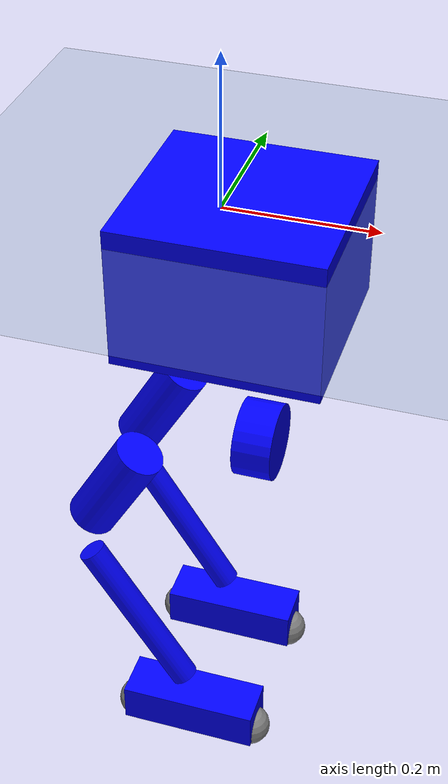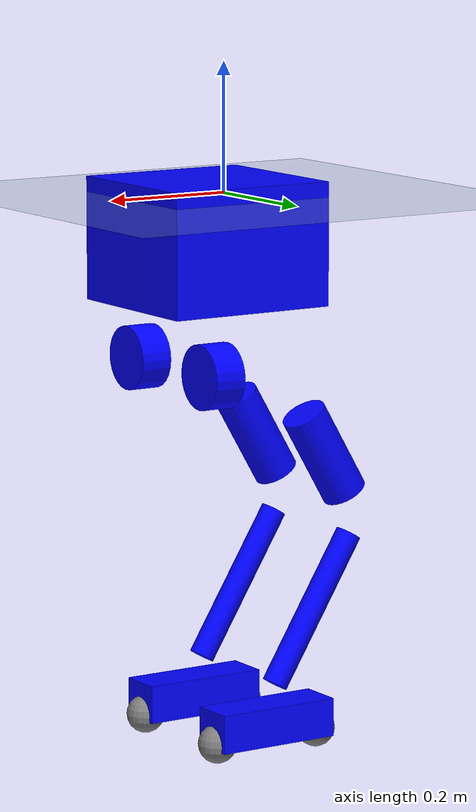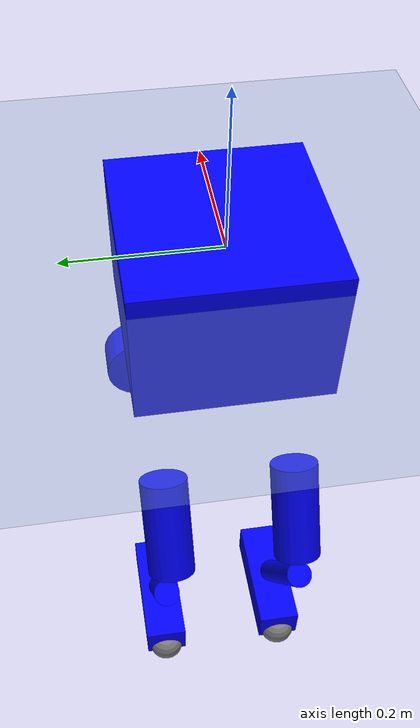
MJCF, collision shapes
<mujoco model="SF_TRON1">
    <compiler angle="radian" meshdir="../meshes/" />
    <size njmax="500" nconmax="100" />

    <default>
        <light castshadow="false" diffuse="1 1 1" />
        <camera fovy="60"/>
        <default class="visual">
            <geom contype="0" conaffinity="0" group="1" type="mesh" rgba="0.9 0.9 0.9 1.0"/>
        </default>
        <joint armature="0.01" damping="0.01"/>
        <geom contype="1" conaffinity="1" condim="3" friction="0.8 0.005 0.0001" rgba="0.5 0.6 0.7 0.0" margin="0.001" group="0" />
    </default>
    <visual>
        <rgba com="0.502 1.0 0 0.5" contactpoint="1.0 1.0 0.6 0.4" contactforce="0.2 0.98 0.2 0.8"/>
        <scale com="0.2" forcewidth="0.05" contactwidth="0.10" contactheight="0.04"/>
    </visual>

    <asset>
        <mesh name="base_Link" file="base_Link.STL" />
        <mesh name="abad_L_Link" file="abad_L_Link.STL" />
        <mesh name="hip_L_Link" file="hip_L_Link.STL" />
        <mesh name="knee_L_Link" file="knee_L_Link.STL" />
        <mesh name="ankle_L_Link" file="ankle_L_Link.STL" />
        <mesh name="abad_R_Link" file="abad_R_Link.STL" />
        <mesh name="hip_R_Link" file="hip_R_Link.STL" />
        <mesh name="knee_R_Link" file="knee_R_Link.STL" />
        <mesh name="ankle_R_Link" file="ankle_R_Link.STL" />
    </asset>

    <asset>
        <texture type='skybox' builtin='gradient' width='512' height='512' rgb1="1.0 1.0 1.0" rgb2="1.0 1.0 1.0"/>
        <texture name="texplane" type="2d" builtin="checker" rgb1="0.35 0.35 0.35" rgb2="0.55 0.55 0.55" width="512" height="512" mark="cross" markrgb=".8 .8 .8"/>
        <material name="matplane" reflectance="0.0" texture="texplane" texrepeat="1 1" texuniform="true"/>
    </asset>
        <option timestep="0.001"/>

    <keyframe>
        <key name="0" qpos="0 0 0.85 1 0 0 0 0 0 0 0 0 0 0 0" />
    </keyframe>

    <worldbody>
        <geom name="floor" rgba="0.5 0.6 0.7 1" pos="0 0 0" size="0 0 0.25" type="plane" material="matplane" condim="3"/>
        <camera name="track" mode="trackcom" pos="0 -2.3 1.6" xyaxes="1 0 0 0 0.707 0.707"/>
        <light directional="true" diffuse=".8 .8 .8" pos="0 0 10" dir="0 0 -10"/>

        <body name="base_Link" pos="0 0 0">
            <inertial pos="0.0457123 0.000139854 -0.163809" quat="0.972578 -0.00615364 -0.232461 0.00398682" mass="12" diaginertia="0.154712 0.11093 0.0846371" />
            <joint type="free" limited="false" damping="0.0000" stiffness="0.0000" armature="0"/>
            <site name="imu" pos="0 0 0"/>
            <geom class="visual" rgba="0.79216 0.81961 0.93333 1" mesh="base_Link" />
            <geom name="base_collision" size="0.135 0.13 0.095" pos="0.03 0 -0.072" type="box" rgba="0 0 1 0" />

            <body name="abad_R_Link" pos="0.05556 -0.105 -0.2602">
                <inertial pos="-0.06977 -0.04479 0.00057" quat="0.393019 0.394141 0.579772 0.595024" mass="1.469" diaginertia="0.00252289 0.00208104 0.00139163" />
                <joint name="abad_R_Joint" pos="0 0 0" axis="1 0 0" limited="true" range="-1.39626 0.38397" />
                <geom class="visual" rgba="0.79216 0.81961 0.93333 1" mesh="abad_R_Link" />
                <geom name="abad_R_collision" size="0.05 0.025" pos="0.03 0 0" quat="0.500398 0.5 0.499602 0.5" type="cylinder" rgba="0 0 1 0" />

                <body name="hip_R_Link" pos="-0.077 -0.0205 0">
                    <inertial pos="-0.02869 0.0477 -0.03992" quat="0.426877 0.226903 0.192797 0.853885" mass="2.3" diaginertia="0.0233264 0.0230229 0.00277548" />
                    <joint name="hip_R_Joint" pos="0 0 0" axis="0 1 0" limited="true" range="-1.01229 1.39626" />
                    <geom class="visual" rgba="1 1 1 1" mesh="hip_R_Link" />
                    <geom name="hip_R_collision" size="0.035 0.075" pos="-0.1 0.03 -0.14" quat="0.965093 0 0.261909 0" type="cylinder" rgba="0 0 1 0" />

                    <body name="knee_R_Link" pos="-0.15 0.0205 -0.25981">
                        <inertial pos="0.11452 -0.0013 -0.19367" quat="0.965543 -0.00476557 -0.259713 0.0159388" mass="1.22" diaginertia="0.0144103 0.0143581 0.00061582" />
                        <joint name="knee_R_Joint" pos="0 0 0" axis="0 1 0" limited="true" range="-1.36136 0.872665" />
                        <geom class="visual" rgba="0.79216 0.81961 0.93333 1" mesh="knee_R_Link" />
                        <geom name="knee_R_collision" size="0.02 0.13" pos="0.078 0 -0.12" quat="0.962425 0 -0.271547 0" type="cylinder" rgba="0 0 1 0" />

                        <body name="ankle_R_Link" pos="0.15 0 -0.25981">
                            <inertial pos="0.01074 0.00061 -0.03314" quat="-0.013732 0.694322 -0.0150212 0.719377" mass="0.62" diaginertia="0.0019759 0.00181179 0.000523633" />
                            <joint name="ankle_R_Joint" pos="0 0 0" axis="0 1 0" limited="true" range="-1.5708 1.15192" frictionloss="0.01" />
                            <geom class="visual" rgba="0.26667 0.26667 0.26667 1" mesh="ankle_R_Link" />
                            <geom name="ankle_R_collision" type="box" size="0.1 0.035 0.03" rgba="0 0 1 0" pos="0.01 0 -0.028"/>

                            <site name="heel_R_site" type="sphere" pos="-0.08 0 -0.05" size="0.03"/>
                            <site name="toe_R_site" type="sphere" pos="0.1 0 -0.05" size="0.03"/>
                        </body>
                    </body>
                </body>
            </body>

            <body name="abad_L_Link" pos="0.05556 0.105 -0.2602">
                <inertial pos="-0.06977 0.04479 0.00057" quat="0.595024 0.579772 0.394141 0.393019" mass="1.469" diaginertia="0.00252289 0.00208104 0.00139163" />
                <joint name="abad_L_Joint" pos="0 0 0" axis="1 0 0" limited="true" range="-0.38397 1.39626" />
                <geom class="visual" rgba="0.79216 0.81961 0.93333 1" mesh="abad_L_Link" />
                <geom name="abad_L_collision" size="0.05 0.025" pos="0.03 0 0" quat="0.500398 0.5 0.499602 0.5" type="cylinder" rgba="0 0 1 0" />

                <body name="hip_L_Link" pos="-0.077 0.0205 0">
                    <inertial pos="-0.02869 -0.0477 -0.03992" quat="0.853885 0.192797 0.226903 0.426877" mass="2.3" diaginertia="0.0233264 0.0230229 0.00277548" />
                    <joint name="hip_L_Joint" pos="0 0 0" axis="0 1 0" limited="true" range="-1.01229 1.39626" />
                    <geom class="visual" rgba="1 1 1 1" mesh="hip_L_Link" />
                    <geom name="hip_L_collision" size="0.035 0.075" pos="-0.1 -0.03 -0.14" quat="0.965093 0 0.261909 0" type="cylinder" rgba="0 0 1 0" />

                    <body name="knee_L_Link" pos="-0.15 -0.0205 -0.25981">
                        <inertial pos="0.11452 0.0013 -0.19367" quat="0.965543 0.00476557 -0.259713 -0.0159388" mass="1.22" diaginertia="0.0144103 0.0143581 0.00061582" />
                        <joint name="knee_L_Joint" pos="0 0 0" axis="0 1 0" limited="true" range="-1.36136 0.872665" />
                        <geom class="visual" rgba="0.79216 0.81961 0.93333 1" mesh="knee_L_Link" />
                        <geom name="knee_L_collision" size="0.02 0.13" pos="0.078 0 -0.12" quat="0.962425 0 -0.271547 0" type="cylinder" rgba="0 0 1 0" />

                        <body name="ankle_L_Link" pos="0.15 0 -0.25981">
                            <inertial pos="0.01074 -0.00061 -0.03314" quat="0.013732 0.694322 0.0150212 0.719377" mass="0.62" diaginertia="0.0019759 0.00181179 0.000523633" />
                            <joint name="ankle_L_Joint" pos="0 0 0" axis="0 1 0" limited="true" range="-1.5708 1.15192" frictionloss="0.01" />
                            <geom class="visual" rgba="0.26667 0.26667 0.26667 1" mesh="ankle_L_Link" />
                            <geom name="ankle_L_collision" type="box" size="0.1 0.035 0.03" rgba="0 0 1 0" pos="0.01 0 -0.028"/>

                            <site name="heel_L_site" type="sphere" pos="-0.08 0 -0.05" size="0.03"/>
                            <site name="toe_L_site" type="sphere" pos="0.1 0 -0.05" size="0.03"/>
                        </body>
                    </body>
                </body>
            </body>
        </body>
    </worldbody>

    <actuator>
        <motor name="abad_R_Joint"   gear="1"  joint="abad_R_Joint"  ctrllimited='true' ctrlrange='-80 80' />
        <motor name="hip_R_Joint"    gear="1"  joint="hip_R_Joint"   ctrllimited='true' ctrlrange='-80 80' />
        <motor name="knee_R_Joint"   gear="1"  joint="knee_R_Joint"  ctrllimited='true' ctrlrange='-80 80'/>
        <motor name="ankle_R_Joint"  gear="1"  joint="ankle_R_Joint" ctrllimited='true' ctrlrange='-20 20'/>
        <motor name="abad_L_Joint"   gear="1"  joint="abad_L_Joint"  ctrllimited='true' ctrlrange='-80 80'/>
        <motor name="hip_L_Joint"    gear="1"  joint="hip_L_Joint"   ctrllimited='true' ctrlrange='-80 80'/>
        <motor name="knee_L_Joint"   gear="1"  joint="knee_L_Joint"  ctrllimited='true' ctrlrange='-80 80'/>
        <motor name="ankle_L_Joint"  gear="1"  joint="ankle_L_Joint" ctrllimited='true' ctrlrange='-20 20'/>
    </actuator>

    <sensor>
        <jointpos name="abad_R_Joint_pos"    joint="abad_R_Joint" noise="0.0"/>
        <jointpos name="hip_R_Joint_pos"     joint="hip_R_Joint" noise="0.0"/>
        <jointpos name="knee_R_Joint_pos"    joint="knee_R_Joint" noise="0.0"/>
        <jointpos name="ankle_R_Joint_pos"   joint="ankle_R_Joint" noise="0.0"/>
        <jointpos name="abad_L_Joint_pos"    joint="abad_L_Joint" noise="0.0"/>
        <jointpos name="hip_L_Joint_pos"     joint="hip_L_Joint" noise="0.0"/>
        <jointpos name="knee_L_Joint_pos"    joint="knee_L_Joint" noise="0.0"/>
        <jointpos name="ankle_L_Joint_pos"   joint="ankle_L_Joint" noise="0.0"/>

        <jointvel name="abad_R_Joint_vel"    joint="abad_R_Joint" noise="0.01"/>
        <jointvel name="hip_R_Joint_vel"     joint="hip_R_Joint" noise="0.01"/>
        <jointvel name="knee_R_Joint_vel"    joint="knee_R_Joint" noise="0.01"/>
        <jointvel name="ankle_R_Joint_vel"   joint="ankle_R_Joint" noise="0.01"/>
        <jointvel name="abad_L_Joint_vel"    joint="abad_L_Joint" noise="0.01"/>
        <jointvel name="hip_L_Joint_vel"     joint="hip_L_Joint" noise="0.01"/>
        <jointvel name="knee_L_Joint_vel"    joint="knee_L_Joint" noise="0.01"/>
        <jointvel name="ankle_L_Joint_vel"   joint="ankle_L_Joint" noise="0.01"/>

        <jointactuatorfrc name="abad_R_Joint_torque"    joint="abad_R_Joint" noise="0.01"/>
        <jointactuatorfrc name="hip_R_Joint_torque"     joint="hip_R_Joint" noise="0.01"/>
        <jointactuatorfrc name="knee_R_Joint_torque"    joint="knee_R_Joint" noise="0.01"/>
        <jointactuatorfrc name="ankle_R_Joint_torque"   joint="ankle_R_Joint" noise="0.01"/>
        <jointactuatorfrc name="abad_L_Joint_torque"    joint="abad_L_Joint" noise="0.01"/>
        <jointactuatorfrc name="hip_L_Joint_torque"     joint="hip_L_Joint" noise="0.01"/>
        <jointactuatorfrc name="knee_L_Joint_torque"    joint="knee_L_Joint" noise="0.01"/>
        <jointactuatorfrc name="ankle_L_Joint_torque"   joint="ankle_L_Joint" noise="0.01"/>

        <framequat name="imu_quat" objtype="site" objname="imu" noise="0.01"/>
        <gyro name="imu_gyro" site="imu" noise="0.01"/>
        <accelerometer name="imu_acc" site="imu" noise="0.01"/>

        <framepos name="frame_pos" objtype="site" objname="imu" />
        <framelinvel name="frame_vel" objtype="site" objname="imu" />

        <touch name="foot_force_heel_R" site="heel_R_site" />
        <touch name="foot_force_toe_R" site="toe_R_site" />
        <touch name="foot_force_heel_L" site="heel_L_site" />
        <touch name="foot_force_toe_L" site="toe_L_site" />
    </sensor>
</mujoco>
